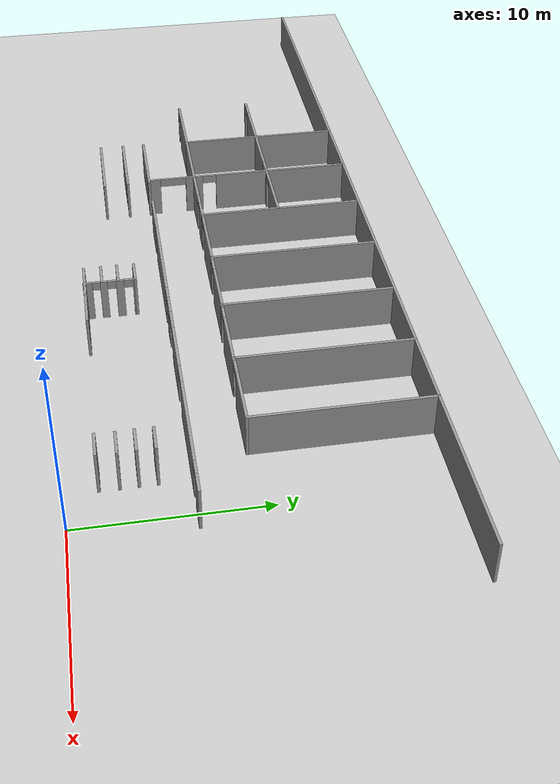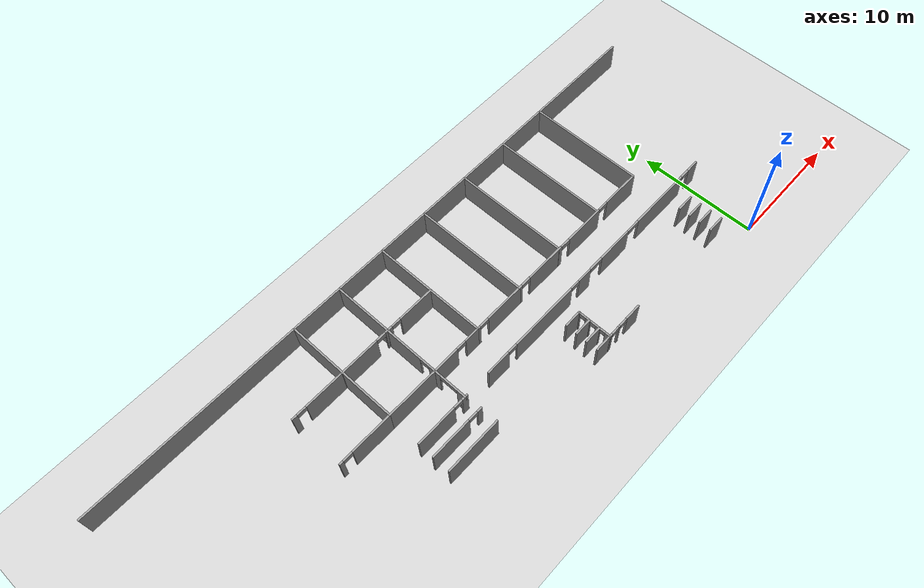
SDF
<sdf version="1.7">
 <world name="default">
  <model name="ground_plane">
   <static>1</static>
   <link name="link">
    <collision name="collision">
     <geometry><plane><normal>0 0 1</normal><size>100 100</size></plane></geometry>
     <surface>
      <contact><collide_bitmask>65535</collide_bitmask></contact>
      <friction><ode><mu>100</mu><mu2>50</mu2></ode></friction>
     </surface>
    </collision>
    <visual name="visual">
     <cast_shadows>0</cast_shadows>
     <geometry><plane><normal>0 0 1</normal><size>100 100</size></plane></geometry>
     <material>
      <script><uri>file://media/materials/scripts/gazebo.material</uri><name>Gazebo/Grey</name></script>
     </material>
    </visual>
   </link>
  </model>
  <model name="anglo_3_andar">
   <pose>-0.36557 -0.844839 0 0 -0 0</pose>
   <link name="Wall_100">
    <collision name="Wall_100_Collision">
     <geometry><box><size>9.75 0.15 2.5</size></box></geometry>
     <pose>0 0 1.25 0 -0 0</pose>
    </collision>
    <visual name="Wall_100_Visual">
     <pose>0 0 1.25 0 -0 0</pose>
     <geometry><box><size>9.75 0.15 2.5</size></box></geometry>
     <material>
      <script><uri>file://media/materials/scripts/gazebo.material</uri><name>Gazebo/Grey</name></script>
      <ambient>1 1 1 1</ambient>
     </material>
     <meta><layer>0</layer></meta>
    </visual>
    <pose>-16.5823 14.6737 0 0 -0 -1.5708</pose>
   </link>
   <link name="Wall_102">
    <pose>-14.2823 9.87368 0 0 -0 0</pose>
    <visual name="Wall_102_Visual_0">
     <pose>-2.195 0 1.25 0 -0 0</pose>
     <geometry><box><size>0.360001 0.15 2.5</size></box></geometry>
     <material>
      <script><uri>file://media/materials/scripts/gazebo.material</uri><name>Gazebo/Grey</name></script>
      <ambient>1 1 1 1</ambient>
     </material>
     <meta><layer>0</layer></meta>
    </visual>
    <collision name="Wall_102_Collision_0">
     <geometry><box><size>0.360001 0.15 2.5</size></box></geometry>
     <pose>-2.195 0 1.25 0 -0 0</pose>
    </collision>
    <visual name="Wall_102_Visual_1">
     <pose>0.61 0 1.25 0 -0 0</pose>
     <geometry><box><size>3.53 0.15 2.5</size></box></geometry>
     <material>
      <script><uri>file://media/materials/scripts/gazebo.material</uri><name>Gazebo/Grey</name></script>
      <ambient>1 1 1 1</ambient>
     </material>
     <meta><layer>0</layer></meta>
    </visual>
    <collision name="Wall_102_Collision_1">
     <geometry><box><size>3.53 0.15 2.5</size></box></geometry>
     <pose>0.61 0 1.25 0 -0 0</pose>
    </collision>
    <visual name="Wall_102_Visual_2">
     <pose>-1.585 0 2.25 0 -0 0</pose>
     <geometry><box><size>0.86 0.15 0.5</size></box></geometry>
     <material>
      <script><uri>file://media/materials/scripts/gazebo.material</uri><name>Gazebo/Grey</name></script>
      <ambient>1 1 1 1</ambient>
     </material>
     <meta><layer>0</layer></meta>
    </visual>
    <collision name="Wall_102_Collision_2">
     <geometry><box><size>0.86 0.15 0.5</size></box></geometry>
     <pose>-1.585 0 2.25 0 -0 0</pose>
    </collision>
   </link>
   <link name="Wall_104">
    <collision name="Wall_104_Collision">
     <geometry><box><size>9.75 0.15 2.5</size></box></geometry>
     <pose>0 0 1.25 0 -0 0</pose>
    </collision>
    <visual name="Wall_104_Visual">
     <pose>0 0 1.25 0 -0 0</pose>
     <geometry><box><size>9.75 0.15 2.5</size></box></geometry>
     <material>
      <script><uri>file://media/materials/scripts/gazebo.material</uri><name>Gazebo/Grey</name></script>
      <ambient>1 1 1 1</ambient>
     </material>
     <meta><layer>0</layer></meta>
    </visual>
    <pose>-21.0123 14.6737 0 0 -0 -1.5708</pose>
   </link>
   <link name="Wall_106">
    <pose>-18.7973 9.87368 0 0 -0 0</pose>
    <visual name="Wall_106_Visual_0">
     <pose>-2.13 0 1.25 0 -0 0</pose>
     <geometry><box><size>0.319999 0.15 2.5</size></box></geometry>
     <material>
      <script><uri>file://media/materials/scripts/gazebo.material</uri><name>Gazebo/Grey</name></script>
      <ambient>1 1 1 1</ambient>
     </material>
     <meta><layer>0</layer></meta>
    </visual>
    <collision name="Wall_106_Collision_0">
     <geometry><box><size>0.319999 0.15 2.5</size></box></geometry>
     <pose>-2.13 0 1.25 0 -0 0</pose>
    </collision>
    <visual name="Wall_106_Visual_1">
     <pose>0.579999 0 1.25 0 -0 0</pose>
     <geometry><box><size>3.42 0.15 2.5</size></box></geometry>
     <material>
      <script><uri>file://media/materials/scripts/gazebo.material</uri><name>Gazebo/Grey</name></script>
      <ambient>1 1 1 1</ambient>
     </material>
     <meta><layer>0</layer></meta>
    </visual>
    <collision name="Wall_106_Collision_1">
     <geometry><box><size>3.42 0.15 2.5</size></box></geometry>
     <pose>0.579999 0 1.25 0 -0 0</pose>
    </collision>
    <visual name="Wall_106_Visual_2">
     <pose>-1.55 0 2.25 0 -0 0</pose>
     <geometry><box><size>0.84 0.15 0.5</size></box></geometry>
     <material>
      <script><uri>file://media/materials/scripts/gazebo.material</uri><name>Gazebo/Grey</name></script>
      <ambient>1 1 1 1</ambient>
     </material>
     <meta><layer>0</layer></meta>
    </visual>
    <collision name="Wall_106_Collision_2">
     <geometry><box><size>0.84 0.15 0.5</size></box></geometry>
     <pose>-1.55 0 2.25 0 -0 0</pose>
    </collision>
   </link>
   <link name="Wall_108">
    <pose>-25.3623 14.6637 0 0 -0 -1.5708</pose>
    <visual name="Wall_108_Visual_0">
     <pose>-0.73 0 1.25 0 -0 0</pose>
     <geometry><box><size>8.29 0.15 2.5</size></box></geometry>
     <material>
      <script><uri>file://media/materials/scripts/gazebo.material</uri><name>Gazebo/Grey</name></script>
      <ambient>1 1 1 1</ambient>
     </material>
     <meta><layer>0</layer></meta>
    </visual>
    <collision name="Wall_108_Collision_0">
     <geometry><box><size>8.29 0.15 2.5</size></box></geometry>
     <pose>-0.73 0 1.25 0 -0 0</pose>
    </collision>
    <visual name="Wall_108_Visual_1">
     <pose>4.57 0 1.25 0 -0 0</pose>
     <geometry><box><size>0.61 0.15 2.5</size></box></geometry>
     <material>
      <script><uri>file://media/materials/scripts/gazebo.material</uri><name>Gazebo/Grey</name></script>
      <ambient>1 1 1 1</ambient>
     </material>
     <meta><layer>0</layer></meta>
    </visual>
    <collision name="Wall_108_Collision_1">
     <geometry><box><size>0.61 0.15 2.5</size></box></geometry>
     <pose>4.57 0 1.25 0 -0 0</pose>
    </collision>
    <visual name="Wall_108_Visual_2">
     <pose>3.84 0 2.25 0 -0 0</pose>
     <geometry><box><size>0.85 0.15 0.5</size></box></geometry>
     <material>
      <script><uri>file://media/materials/scripts/gazebo.material</uri><name>Gazebo/Grey</name></script>
      <ambient>1 1 1 1</ambient>
     </material>
     <meta><layer>0</layer></meta>
    </visual>
    <collision name="Wall_108_Collision_2">
     <geometry><box><size>0.85 0.15 0.5</size></box></geometry>
     <pose>3.84 0 2.25 0 -0 0</pose>
    </collision>
   </link>
   <link name="Wall_110">
    <pose>-23.2173 14.5137 0 0 -0 0</pose>
    <visual name="Wall_110_Visual_0">
     <pose>-1.9875 0 1.25 0 -0 0</pose>
     <geometry><box><size>0.524999 0.15 2.5</size></box></geometry>
     <material>
      <script><uri>file://media/materials/scripts/gazebo.material</uri><name>Gazebo/Grey</name></script>
      <ambient>1 1 1 1</ambient>
     </material>
     <meta><layer>0</layer></meta>
    </visual>
    <collision name="Wall_110_Collision_0">
     <geometry><box><size>0.524999 0.15 2.5</size></box></geometry>
     <pose>-1.9875 0 1.25 0 -0 0</pose>
    </collision>
    <visual name="Wall_110_Visual_1">
     <pose>0.6725 0 1.25 0 -0 0</pose>
     <geometry><box><size>3.155 0.15 2.5</size></box></geometry>
     <material>
      <script><uri>file://media/materials/scripts/gazebo.material</uri><name>Gazebo/Grey</name></script>
      <ambient>1 1 1 1</ambient>
     </material>
     <meta><layer>0</layer></meta>
    </visual>
    <collision name="Wall_110_Collision_1">
     <geometry><box><size>3.155 0.15 2.5</size></box></geometry>
     <pose>0.6725 0 1.25 0 -0 0</pose>
    </collision>
    <visual name="Wall_110_Visual_2">
     <pose>-1.315 0 2.25 0 -0 0</pose>
     <geometry><box><size>0.82 0.15 0.5</size></box></geometry>
     <material>
      <script><uri>file://media/materials/scripts/gazebo.material</uri><name>Gazebo/Grey</name></script>
      <ambient>1 1 1 1</ambient>
     </material>
     <meta><layer>0</layer></meta>
    </visual>
    <collision name="Wall_110_Collision_2">
     <geometry><box><size>0.82 0.15 0.5</size></box></geometry>
     <pose>-1.315 0 2.25 0 -0 0</pose>
    </collision>
   </link>
   <link name="Wall_112">
    <pose>-23.1873 9.86868 0 0 -0 0.002299</pose>
    <visual name="Wall_112_Visual_0">
     <pose>-1.10011 0 1.25 0 -0 0</pose>
     <geometry><box><size>2.29978 0.15 2.5</size></box></geometry>
     <material>
      <script><uri>file://media/materials/scripts/gazebo.material</uri><name>Gazebo/Grey</name></script>
      <ambient>1 1 1 1</ambient>
     </material>
     <meta><layer>0</layer></meta>
    </visual>
    <collision name="Wall_112_Collision_0">
     <geometry><box><size>2.29978 0.15 2.5</size></box></geometry>
     <pose>-1.10011 0 1.25 0 -0 0</pose>
    </collision>
    <visual name="Wall_112_Visual_1">
     <pose>1.56989 0 1.25 0 -0 0</pose>
     <geometry><box><size>1.36023 0.15 2.5</size></box></geometry>
     <material>
      <script><uri>file://media/materials/scripts/gazebo.material</uri><name>Gazebo/Grey</name></script>
      <ambient>1 1 1 1</ambient>
     </material>
     <meta><layer>0</layer></meta>
    </visual>
    <collision name="Wall_112_Collision_1">
     <geometry><box><size>1.36023 0.15 2.5</size></box></geometry>
     <pose>1.56989 0 1.25 0 -0 0</pose>
    </collision>
    <visual name="Wall_112_Visual_2">
     <pose>0.469779 0 2.25 0 -0 0</pose>
     <geometry><box><size>0.84 0.15 0.5</size></box></geometry>
     <material>
      <script><uri>file://media/materials/scripts/gazebo.material</uri><name>Gazebo/Grey</name></script>
      <ambient>1 1 1 1</ambient>
     </material>
     <meta><layer>0</layer></meta>
    </visual>
    <collision name="Wall_112_Collision_2">
     <geometry><box><size>0.84 0.15 0.5</size></box></geometry>
     <pose>0.469779 0 2.25 0 -0 0</pose>
    </collision>
   </link>
   <link name="Wall_114">
    <collision name="Wall_114_Collision">
     <geometry><box><size>9.75 0.15 2.5</size></box></geometry>
     <pose>0 0 1.25 0 -0 0</pose>
    </collision>
    <visual name="Wall_114_Visual">
     <pose>0 0 1.25 0 -0 0</pose>
     <geometry><box><size>9.75 0.15 2.5</size></box></geometry>
     <material>
      <script><uri>file://media/materials/scripts/gazebo.material</uri><name>Gazebo/Grey</name></script>
      <ambient>1 1 1 1</ambient>
     </material>
     <meta><layer>0</layer></meta>
    </visual>
    <pose>-29.7023 14.6737 0 0 -0 -1.5708</pose>
   </link>
   <link name="Wall_116">
    <pose>-27.5673 14.5137 0 0 -0 0</pose>
    <visual name="Wall_116_Visual_0">
     <pose>-0.565 0 1.25 0 -0 0</pose>
     <geometry><box><size>3.37 0.15 2.5</size></box></geometry>
     <material>
      <script><uri>file://media/materials/scripts/gazebo.material</uri><name>Gazebo/Grey</name></script>
      <ambient>1 1 1 1</ambient>
     </material>
     <meta><layer>0</layer></meta>
    </visual>
    <collision name="Wall_116_Collision_0">
     <geometry><box><size>3.37 0.15 2.5</size></box></geometry>
     <pose>-0.565 0 1.25 0 -0 0</pose>
    </collision>
    <visual name="Wall_116_Visual_1">
     <pose>2.1 0 1.25 0 -0 0</pose>
     <geometry><box><size>0.3 0.15 2.5</size></box></geometry>
     <material>
      <script><uri>file://media/materials/scripts/gazebo.material</uri><name>Gazebo/Grey</name></script>
      <ambient>1 1 1 1</ambient>
     </material>
     <meta><layer>0</layer></meta>
    </visual>
    <collision name="Wall_116_Collision_1">
     <geometry><box><size>0.3 0.15 2.5</size></box></geometry>
     <pose>2.1 0 1.25 0 -0 0</pose>
    </collision>
    <visual name="Wall_116_Visual_2">
     <pose>1.535 0 2.25 0 -0 0</pose>
     <geometry><box><size>0.83 0.15 0.5</size></box></geometry>
     <material>
      <script><uri>file://media/materials/scripts/gazebo.material</uri><name>Gazebo/Grey</name></script>
      <ambient>1 1 1 1</ambient>
     </material>
     <meta><layer>0</layer></meta>
    </visual>
    <collision name="Wall_116_Collision_2">
     <geometry><box><size>0.83 0.15 0.5</size></box></geometry>
     <pose>1.535 0 2.25 0 -0 0</pose>
    </collision>
   </link>
   <link name="Wall_118">
    <collision name="Wall_118_Collision">
     <geometry><box><size>4.49001 0.15 2.5</size></box></geometry>
     <pose>0 0 1.25 0 -0 0</pose>
    </collision>
    <visual name="Wall_118_Visual">
     <pose>0 0 1.25 0 -0 0</pose>
     <geometry><box><size>4.49001 0.15 2.5</size></box></geometry>
     <material>
      <script><uri>file://media/materials/scripts/gazebo.material</uri><name>Gazebo/Grey</name></script>
      <ambient>1 1 1 1</ambient>
     </material>
     <meta><layer>0</layer></meta>
    </visual>
    <pose>-27.5323 9.86868 0 0 -0 -0.002304</pose>
   </link>
   <link name="Wall_122">
    <pose>-32.0123 14.5137 0 0 -0 0</pose>
    <visual name="Wall_122_Visual_0">
     <pose>-2.11 0 1.25 0 -0 0</pose>
     <geometry><box><size>0.469999 0.15 2.5</size></box></geometry>
     <material>
      <script><uri>file://media/materials/scripts/gazebo.material</uri><name>Gazebo/Grey</name></script>
      <ambient>1 1 1 1</ambient>
     </material>
     <meta><layer>0</layer></meta>
    </visual>
    <collision name="Wall_122_Collision_0">
     <geometry><box><size>0.469999 0.15 2.5</size></box></geometry>
     <pose>-2.11 0 1.25 0 -0 0</pose>
    </collision>
    <visual name="Wall_122_Visual_1">
     <pose>0.639999 0 1.25 0 -0 0</pose>
     <geometry><box><size>3.41 0.15 2.5</size></box></geometry>
     <material>
      <script><uri>file://media/materials/scripts/gazebo.material</uri><name>Gazebo/Grey</name></script>
      <ambient>1 1 1 1</ambient>
     </material>
     <meta><layer>0</layer></meta>
    </visual>
    <collision name="Wall_122_Collision_1">
     <geometry><box><size>3.41 0.15 2.5</size></box></geometry>
     <pose>0.639999 0 1.25 0 -0 0</pose>
    </collision>
    <visual name="Wall_122_Visual_2">
     <pose>-1.47 0 2.25 0 -0 0</pose>
     <geometry><box><size>0.81 0.15 0.5</size></box></geometry>
     <material>
      <script><uri>file://media/materials/scripts/gazebo.material</uri><name>Gazebo/Grey</name></script>
      <ambient>1 1 1 1</ambient>
     </material>
     <meta><layer>0</layer></meta>
    </visual>
    <collision name="Wall_122_Collision_2">
     <geometry><box><size>0.81 0.15 0.5</size></box></geometry>
     <pose>-1.47 0 2.25 0 -0 0</pose>
    </collision>
   </link>
   <link name="Wall_127">
    <pose>-31.9873 9.87368 0 0 -0 0</pose>
    <visual name="Wall_127_Visual_0">
     <pose>-2.1825 0 1.25 0 -0 0</pose>
     <geometry><box><size>0.354999 0.15 2.5</size></box></geometry>
     <material>
      <script><uri>file://media/materials/scripts/gazebo.material</uri><name>Gazebo/Grey</name></script>
      <ambient>1 1 1 1</ambient>
     </material>
     <meta><layer>0</layer></meta>
    </visual>
    <collision name="Wall_127_Collision_0">
     <geometry><box><size>0.354999 0.15 2.5</size></box></geometry>
     <pose>-2.1825 0 1.25 0 -0 0</pose>
    </collision>
    <visual name="Wall_127_Visual_1">
     <pose>0.587499 0 1.25 0 -0 0</pose>
     <geometry><box><size>3.545 0.15 2.5</size></box></geometry>
     <material>
      <script><uri>file://media/materials/scripts/gazebo.material</uri><name>Gazebo/Grey</name></script>
      <ambient>1 1 1 1</ambient>
     </material>
     <meta><layer>0</layer></meta>
    </visual>
    <collision name="Wall_127_Collision_1">
     <geometry><box><size>3.545 0.15 2.5</size></box></geometry>
     <pose>0.587499 0 1.25 0 -0 0</pose>
    </collision>
    <visual name="Wall_127_Visual_2">
     <pose>-1.595 0 2.25 0 -0 0</pose>
     <geometry><box><size>0.82 0.15 0.5</size></box></geometry>
     <material>
      <script><uri>file://media/materials/scripts/gazebo.material</uri><name>Gazebo/Grey</name></script>
      <ambient>1 1 1 1</ambient>
     </material>
     <meta><layer>0</layer></meta>
    </visual>
    <collision name="Wall_127_Collision_2">
     <geometry><box><size>0.82 0.15 0.5</size></box></geometry>
     <pose>-1.595 0 2.25 0 -0 0</pose>
    </collision>
   </link>
   <link name="Wall_197">
    <pose>-27.5023 7.01368 0 0 -0 0</pose>
    <visual name="Wall_197_Visual_0">
     <pose>-0.65 0 1.25 0 -0 0</pose>
     <geometry><box><size>3.45 0.15 2.5</size></box></geometry>
     <material>
      <script><uri>file://media/materials/scripts/gazebo.material</uri><name>Gazebo/Grey</name></script>
      <ambient>1 1 1 1</ambient>
     </material>
     <meta><layer>0</layer></meta>
    </visual>
    <collision name="Wall_197_Collision_0">
     <geometry><box><size>3.45 0.15 2.5</size></box></geometry>
     <pose>-0.65 0 1.25 0 -0 0</pose>
    </collision>
    <visual name="Wall_197_Visual_1">
     <pose>2.105 0 1.25 0 -0 0</pose>
     <geometry><box><size>0.54 0.15 2.5</size></box></geometry>
     <material>
      <script><uri>file://media/materials/scripts/gazebo.material</uri><name>Gazebo/Grey</name></script>
      <ambient>1 1 1 1</ambient>
     </material>
     <meta><layer>0</layer></meta>
    </visual>
    <collision name="Wall_197_Collision_1">
     <geometry><box><size>0.54 0.15 2.5</size></box></geometry>
     <pose>2.105 0 1.25 0 -0 0</pose>
    </collision>
    <visual name="Wall_197_Visual_2">
     <pose>1.455 0 2.25 0 -0 0</pose>
     <geometry><box><size>0.76 0.15 0.5</size></box></geometry>
     <material>
      <script><uri>file://media/materials/scripts/gazebo.material</uri><name>Gazebo/Grey</name></script>
      <ambient>1 1 1 1</ambient>
     </material>
     <meta><layer>0</layer></meta>
    </visual>
    <collision name="Wall_197_Collision_2">
     <geometry><box><size>0.76 0.15 0.5</size></box></geometry>
     <pose>1.455 0 2.25 0 -0 0</pose>
    </collision>
   </link>
   <link name="Wall_201">
    <pose>-27.5223 5.67368 0 0 -0 0</pose>
    <visual name="Wall_201_Visual_0">
     <pose>-0.63 0 1.25 0 -0 0</pose>
     <geometry><box><size>3.49 0.15 2.5</size></box></geometry>
     <material>
      <script><uri>file://media/materials/scripts/gazebo.material</uri><name>Gazebo/Grey</name></script>
      <ambient>1 1 1 1</ambient>
     </material>
     <meta><layer>0</layer></meta>
    </visual>
    <collision name="Wall_201_Collision_0">
     <geometry><box><size>3.49 0.15 2.5</size></box></geometry>
     <pose>-0.63 0 1.25 0 -0 0</pose>
    </collision>
    <visual name="Wall_201_Visual_1">
     <pose>2.145 0 1.25 0 -0 0</pose>
     <geometry><box><size>0.460001 0.15 2.5</size></box></geometry>
     <material>
      <script><uri>file://media/materials/scripts/gazebo.material</uri><name>Gazebo/Grey</name></script>
      <ambient>1 1 1 1</ambient>
     </material>
     <meta><layer>0</layer></meta>
    </visual>
    <collision name="Wall_201_Collision_1">
     <geometry><box><size>0.460001 0.15 2.5</size></box></geometry>
     <pose>2.145 0 1.25 0 -0 0</pose>
    </collision>
    <visual name="Wall_201_Visual_2">
     <pose>1.515 0 2.25 0 -0 0</pose>
     <geometry><box><size>0.8 0.15 0.5</size></box></geometry>
     <material>
      <script><uri>file://media/materials/scripts/gazebo.material</uri><name>Gazebo/Grey</name></script>
      <ambient>1 1 1 1</ambient>
     </material>
     <meta><layer>0</layer></meta>
    </visual>
    <collision name="Wall_201_Collision_2">
     <geometry><box><size>0.8 0.15 0.5</size></box></geometry>
     <pose>1.515 0 2.25 0 -0 0</pose>
    </collision>
   </link>
   <link name="Wall_203">
    <collision name="Wall_203_Collision">
     <geometry><box><size>4.75 0.15 2.5</size></box></geometry>
     <pose>0 0 1.25 0 -0 0</pose>
    </collision>
    <visual name="Wall_203_Visual">
     <pose>0 0 1.25 0 -0 0</pose>
     <geometry><box><size>4.75 0.15 2.5</size></box></geometry>
     <material>
      <script><uri>file://media/materials/scripts/gazebo.material</uri><name>Gazebo/Grey</name></script>
      <ambient>1 1 1 1</ambient>
     </material>
     <meta><layer>0</layer></meta>
    </visual>
    <pose>-27.5023 4.23368 0 0 -0 0</pose>
   </link>
   <link name="Wall_231">
    <pose>-10.9023 7.03368 0 0 -0 0</pose>
    <visual name="Wall_231_Visual_0">
     <pose>-11.07 0 1.25 0 -0 0</pose>
     <geometry><box><size>2.11 0.15 2.5</size></box></geometry>
     <material>
      <script><uri>file://media/materials/scripts/gazebo.material</uri><name>Gazebo/Grey</name></script>
      <ambient>1 1 1 1</ambient>
     </material>
     <meta><layer>0</layer></meta>
    </visual>
    <collision name="Wall_231_Collision_0">
     <geometry><box><size>2.11 0.15 2.5</size></box></geometry>
     <pose>-11.07 0 1.25 0 -0 0</pose>
    </collision>
    <visual name="Wall_231_Visual_1">
     <pose>-6.19 0 1.25 0 -0 0</pose>
     <geometry><box><size>5.99 0.15 2.5</size></box></geometry>
     <material>
      <script><uri>file://media/materials/scripts/gazebo.material</uri><name>Gazebo/Grey</name></script>
      <ambient>1 1 1 1</ambient>
     </material>
     <meta><layer>0</layer></meta>
    </visual>
    <collision name="Wall_231_Collision_1">
     <geometry><box><size>5.99 0.15 2.5</size></box></geometry>
     <pose>-6.19 0 1.25 0 -0 0</pose>
    </collision>
    <visual name="Wall_231_Visual_2">
     <pose>-1.7 0 1.25 0 -0 0</pose>
     <geometry><box><size>1.31 0.15 2.5</size></box></geometry>
     <material>
      <script><uri>file://media/materials/scripts/gazebo.material</uri><name>Gazebo/Grey</name></script>
      <ambient>1 1 1 1</ambient>
     </material>
     <meta><layer>0</layer></meta>
    </visual>
    <collision name="Wall_231_Collision_2">
     <geometry><box><size>1.31 0.15 2.5</size></box></geometry>
     <pose>-1.7 0 1.25 0 -0 0</pose>
    </collision>
    <visual name="Wall_231_Visual_3">
     <pose>1.84 0 1.25 0 -0 0</pose>
     <geometry><box><size>3.15 0.15 2.5</size></box></geometry>
     <material>
      <script><uri>file://media/materials/scripts/gazebo.material</uri><name>Gazebo/Grey</name></script>
      <ambient>1 1 1 1</ambient>
     </material>
     <meta><layer>0</layer></meta>
    </visual>
    <collision name="Wall_231_Collision_3">
     <geometry><box><size>3.15 0.15 2.5</size></box></geometry>
     <pose>1.84 0 1.25 0 -0 0</pose>
    </collision>
    <visual name="Wall_231_Visual_4">
     <pose>7.4025 0 1.25 0 -0 0</pose>
     <geometry><box><size>5.515 0.15 2.5</size></box></geometry>
     <material>
      <script><uri>file://media/materials/scripts/gazebo.material</uri><name>Gazebo/Grey</name></script>
      <ambient>1 1 1 1</ambient>
     </material>
     <meta><layer>0</layer></meta>
    </visual>
    <collision name="Wall_231_Collision_4">
     <geometry><box><size>5.515 0.15 2.5</size></box></geometry>
     <pose>7.4025 0 1.25 0 -0 0</pose>
    </collision>
    <visual name="Wall_231_Visual_5">
     <pose>11.5625 0 1.25 0 -0 0</pose>
     <geometry><box><size>1.125 0.15 2.5</size></box></geometry>
     <material>
      <script><uri>file://media/materials/scripts/gazebo.material</uri><name>Gazebo/Grey</name></script>
      <ambient>1 1 1 1</ambient>
     </material>
     <meta><layer>0</layer></meta>
    </visual>
    <collision name="Wall_231_Collision_5">
     <geometry><box><size>1.125 0.15 2.5</size></box></geometry>
     <pose>11.5625 0 1.25 0 -0 0</pose>
    </collision>
    <visual name="Wall_231_Visual_6">
     <pose>-9.6 0 2.25 0 -0 0</pose>
     <geometry><box><size>0.83 0.15 0.5</size></box></geometry>
     <material>
      <script><uri>file://media/materials/scripts/gazebo.material</uri><name>Gazebo/Grey</name></script>
      <ambient>1 1 1 1</ambient>
     </material>
     <meta><layer>0</layer></meta>
    </visual>
    <collision name="Wall_231_Collision_6">
     <geometry><box><size>0.83 0.15 0.5</size></box></geometry>
     <pose>-9.6 0 2.25 0 -0 0</pose>
    </collision>
    <visual name="Wall_231_Visual_7">
     <pose>-2.775 0 2.25 0 -0 0</pose>
     <geometry><box><size>0.84 0.15 0.5</size></box></geometry>
     <material>
      <script><uri>file://media/materials/scripts/gazebo.material</uri><name>Gazebo/Grey</name></script>
      <ambient>1 1 1 1</ambient>
     </material>
     <meta><layer>0</layer></meta>
    </visual>
    <collision name="Wall_231_Collision_7">
     <geometry><box><size>0.84 0.15 0.5</size></box></geometry>
     <pose>-2.775 0 2.25 0 -0 0</pose>
    </collision>
    <visual name="Wall_231_Visual_8">
     <pose>-0.389999 0 2.25 0 -0 0</pose>
     <geometry><box><size>1.31 0.15 0.5</size></box></geometry>
     <material>
      <script><uri>file://media/materials/scripts/gazebo.material</uri><name>Gazebo/Grey</name></script>
      <ambient>1 1 1 1</ambient>
     </material>
     <meta><layer>0</layer></meta>
    </visual>
    <collision name="Wall_231_Collision_8">
     <geometry><box><size>1.31 0.15 0.5</size></box></geometry>
     <pose>-0.389999 0 2.25 0 -0 0</pose>
    </collision>
    <visual name="Wall_231_Visual_9">
     <pose>4.03 0 2.25 0 -0 0</pose>
     <geometry><box><size>1.23 0.15 0.5</size></box></geometry>
     <material>
      <script><uri>file://media/materials/scripts/gazebo.material</uri><name>Gazebo/Grey</name></script>
      <ambient>1 1 1 1</ambient>
     </material>
     <meta><layer>0</layer></meta>
    </visual>
    <collision name="Wall_231_Collision_9">
     <geometry><box><size>1.23 0.15 0.5</size></box></geometry>
     <pose>4.03 0 2.25 0 -0 0</pose>
    </collision>
    <visual name="Wall_231_Visual_10">
     <pose>10.58 0 2.25 0 -0 0</pose>
     <geometry><box><size>0.84 0.15 0.5</size></box></geometry>
     <material>
      <script><uri>file://media/materials/scripts/gazebo.material</uri><name>Gazebo/Grey</name></script>
      <ambient>1 1 1 1</ambient>
     </material>
     <meta><layer>0</layer></meta>
    </visual>
    <collision name="Wall_231_Collision_10">
     <geometry><box><size>0.84 0.15 0.5</size></box></geometry>
     <pose>10.58 0 2.25 0 -0 0</pose>
    </collision>
   </link>
   <link name="Wall_235">
    <collision name="Wall_235_Collision">
     <geometry><box><size>1.54004 0.15 2.5</size></box></geometry>
     <pose>0 0 1.25 0 -0 0</pose>
    </collision>
    <visual name="Wall_235_Visual">
     <pose>0 0 1.25 0 -0 0</pose>
     <geometry><box><size>1.54004 0.15 2.5</size></box></geometry>
     <material>
      <script><uri>file://media/materials/scripts/gazebo.material</uri><name>Gazebo/Grey</name></script>
      <ambient>1 1 1 1</ambient>
     </material>
     <meta><layer>0</layer></meta>
    </visual>
    <pose>-15.8973 5.37868 0 0 -0 0.007194</pose>
   </link>
   <link name="Wall_237">
    <collision name="Wall_237_Collision">
     <geometry><box><size>1.5 0.15 2.5</size></box></geometry>
     <pose>0 0 1.25 0 -0 0</pose>
    </collision>
    <visual name="Wall_237_Visual">
     <pose>0 0 1.25 0 -0 0</pose>
     <geometry><box><size>1.5 0.15 2.5</size></box></geometry>
     <material>
      <script><uri>file://media/materials/scripts/gazebo.material</uri><name>Gazebo/Grey</name></script>
      <ambient>1 1 1 1</ambient>
     </material>
     <meta><layer>0</layer></meta>
    </visual>
    <pose>-15.9273 4.42368 0 0 -0 0</pose>
   </link>
   <link name="Wall_239">
    <collision name="Wall_239_Collision">
     <geometry><box><size>1.5 0.15 2.5</size></box></geometry>
     <pose>0 0 1.25 0 -0 0</pose>
    </collision>
    <visual name="Wall_239_Visual">
     <pose>0 0 1.25 0 -0 0</pose>
     <geometry><box><size>1.5 0.15 2.5</size></box></geometry>
     <material>
      <script><uri>file://media/materials/scripts/gazebo.material</uri><name>Gazebo/Grey</name></script>
      <ambient>1 1 1 1</ambient>
     </material>
     <meta><layer>0</layer></meta>
    </visual>
    <pose>-15.9373 3.51368 0 0 -0 0</pose>
   </link>
   <link name="Wall_241">
    <pose>-14.2923 2.55368 0 0 -0 0</pose>
    <visual name="Wall_241_Visual_0">
     <pose>-1.53 0 1.25 0 -0 0</pose>
     <geometry><box><size>1.69 0.15 2.5</size></box></geometry>
     <material>
      <script><uri>file://media/materials/scripts/gazebo.material</uri><name>Gazebo/Grey</name></script>
      <ambient>1 1 1 1</ambient>
     </material>
     <meta><layer>0</layer></meta>
    </visual>
    <collision name="Wall_241_Collision_0">
     <geometry><box><size>1.69 0.15 2.5</size></box></geometry>
     <pose>-1.53 0 1.25 0 -0 0</pose>
    </collision>
    <visual name="Wall_241_Visual_1">
     <pose>0.115 0 1.25 0 -0 0</pose>
     <geometry><box><size>0.180001 0.15 2.5</size></box></geometry>
     <material>
      <script><uri>file://media/materials/scripts/gazebo.material</uri><name>Gazebo/Grey</name></script>
      <ambient>1 1 1 1</ambient>
     </material>
     <meta><layer>0</layer></meta>
    </visual>
    <collision name="Wall_241_Collision_1">
     <geometry><box><size>0.180001 0.15 2.5</size></box></geometry>
     <pose>0.115 0 1.25 0 -0 0</pose>
    </collision>
    <visual name="Wall_241_Visual_2">
     <pose>1.665 0 1.25 0 -0 0</pose>
     <geometry><box><size>1.42 0.15 2.5</size></box></geometry>
     <material>
      <script><uri>file://media/materials/scripts/gazebo.material</uri><name>Gazebo/Grey</name></script>
      <ambient>1 1 1 1</ambient>
     </material>
     <meta><layer>0</layer></meta>
    </visual>
    <collision name="Wall_241_Collision_2">
     <geometry><box><size>1.42 0.15 2.5</size></box></geometry>
     <pose>1.665 0 1.25 0 -0 0</pose>
    </collision>
    <visual name="Wall_241_Visual_3">
     <pose>-0.330001 0 2.25 0 -0 0</pose>
     <geometry><box><size>0.71 0.15 0.5</size></box></geometry>
     <material>
      <script><uri>file://media/materials/scripts/gazebo.material</uri><name>Gazebo/Grey</name></script>
      <ambient>1 1 1 1</ambient>
     </material>
     <meta><layer>0</layer></meta>
    </visual>
    <collision name="Wall_241_Collision_3">
     <geometry><box><size>0.71 0.15 0.5</size></box></geometry>
     <pose>-0.330001 0 2.25 0 -0 0</pose>
    </collision>
    <visual name="Wall_241_Visual_4">
     <pose>0.58 0 2.25 0 -0 0</pose>
     <geometry><box><size>0.75 0.15 0.5</size></box></geometry>
     <material>
      <script><uri>file://media/materials/scripts/gazebo.material</uri><name>Gazebo/Grey</name></script>
      <ambient>1 1 1 1</ambient>
     </material>
     <meta><layer>0</layer></meta>
    </visual>
    <collision name="Wall_241_Collision_4">
     <geometry><box><size>0.75 0.15 0.5</size></box></geometry>
     <pose>0.58 0 2.25 0 -0 0</pose>
    </collision>
   </link>
   <link name="Wall_248">
    <pose>-15.2123 3.94868 0 0 -0 -1.5708</pose>
    <visual name="Wall_248_Visual_0">
     <pose>-1.395 0 1.25 0 -0 0</pose>
     <geometry><box><size>0.21 0.15 2.5</size></box></geometry>
     <material>
      <script><uri>file://media/materials/scripts/gazebo.material</uri><name>Gazebo/Grey</name></script>
      <ambient>1 1 1 1</ambient>
     </material>
     <meta><layer>0</layer></meta>
    </visual>
    <collision name="Wall_248_Collision_0">
     <geometry><box><size>0.21 0.15 2.5</size></box></geometry>
     <pose>-1.395 0 1.25 0 -0 0</pose>
    </collision>
    <visual name="Wall_248_Visual_1">
     <pose>-0.5675 0 1.25 0 -0 0</pose>
     <geometry><box><size>0.445 0.15 2.5</size></box></geometry>
     <material>
      <script><uri>file://media/materials/scripts/gazebo.material</uri><name>Gazebo/Grey</name></script>
      <ambient>1 1 1 1</ambient>
     </material>
     <meta><layer>0</layer></meta>
    </visual>
    <collision name="Wall_248_Collision_1">
     <geometry><box><size>0.445 0.15 2.5</size></box></geometry>
     <pose>-0.5675 0 1.25 0 -0 0</pose>
    </collision>
    <visual name="Wall_248_Visual_2">
     <pose>0.3375 0 1.25 0 -0 0</pose>
     <geometry><box><size>0.405 0.15 2.5</size></box></geometry>
     <material>
      <script><uri>file://media/materials/scripts/gazebo.material</uri><name>Gazebo/Grey</name></script>
      <ambient>1 1 1 1</ambient>
     </material>
     <meta><layer>0</layer></meta>
    </visual>
    <collision name="Wall_248_Collision_2">
     <geometry><box><size>0.405 0.15 2.5</size></box></geometry>
     <pose>0.3375 0 1.25 0 -0 0</pose>
    </collision>
    <visual name="Wall_248_Visual_3">
     <pose>1.235 0 1.25 0 -0 0</pose>
     <geometry><box><size>0.53 0.15 2.5</size></box></geometry>
     <material>
      <script><uri>file://media/materials/scripts/gazebo.material</uri><name>Gazebo/Grey</name></script>
      <ambient>1 1 1 1</ambient>
     </material>
     <meta><layer>0</layer></meta>
    </visual>
    <collision name="Wall_248_Collision_3">
     <geometry><box><size>0.53 0.15 2.5</size></box></geometry>
     <pose>1.235 0 1.25 0 -0 0</pose>
    </collision>
    <visual name="Wall_248_Visual_4">
     <pose>-1.04 0 2.25 0 -0 0</pose>
     <geometry><box><size>0.5 0.15 0.5</size></box></geometry>
     <material>
      <script><uri>file://media/materials/scripts/gazebo.material</uri><name>Gazebo/Grey</name></script>
      <ambient>1 1 1 1</ambient>
     </material>
     <meta><layer>0</layer></meta>
    </visual>
    <collision name="Wall_248_Collision_4">
     <geometry><box><size>0.5 0.15 0.5</size></box></geometry>
     <pose>-1.04 0 2.25 0 -0 0</pose>
    </collision>
    <visual name="Wall_248_Visual_5">
     <pose>-0.105 0 2.25 0 -0 0</pose>
     <geometry><box><size>0.48 0.15 0.5</size></box></geometry>
     <material>
      <script><uri>file://media/materials/scripts/gazebo.material</uri><name>Gazebo/Grey</name></script>
      <ambient>1 1 1 1</ambient>
     </material>
     <meta><layer>0</layer></meta>
    </visual>
    <collision name="Wall_248_Collision_5">
     <geometry><box><size>0.48 0.15 0.5</size></box></geometry>
     <pose>-0.105 0 2.25 0 -0 0</pose>
    </collision>
    <visual name="Wall_248_Visual_6">
     <pose>0.755 0 2.25 0 -0 0</pose>
     <geometry><box><size>0.43 0.15 0.5</size></box></geometry>
     <material>
      <script><uri>file://media/materials/scripts/gazebo.material</uri><name>Gazebo/Grey</name></script>
      <ambient>1 1 1 1</ambient>
     </material>
     <meta><layer>0</layer></meta>
    </visual>
    <collision name="Wall_248_Collision_6">
     <geometry><box><size>0.43 0.15 0.5</size></box></geometry>
     <pose>0.755 0 2.25 0 -0 0</pose>
    </collision>
   </link>
   <link name="Wall_258">
    <collision name="Wall_258_Collision">
     <geometry><box><size>1.5 0.15 2.5</size></box></geometry>
     <pose>0 0 1.25 0 -0 0</pose>
    </collision>
    <visual name="Wall_258_Visual">
     <pose>0 0 1.25 0 -0 0</pose>
     <geometry><box><size>1.5 0.15 2.5</size></box></geometry>
     <material>
      <script><uri>file://media/materials/scripts/gazebo.material</uri><name>Gazebo/Grey</name></script>
      <ambient>1 1 1 1</ambient>
     </material>
     <meta><layer>0</layer></meta>
    </visual>
    <pose>-2.52729 5.35368 0 0 -0 0</pose>
   </link>
   <link name="Wall_260">
    <collision name="Wall_260_Collision">
     <geometry><box><size>1.5 0.15 2.5</size></box></geometry>
     <pose>0 0 1.25 0 -0 0</pose>
    </collision>
    <visual name="Wall_260_Visual">
     <pose>0 0 1.25 0 -0 0</pose>
     <geometry><box><size>1.5 0.15 2.5</size></box></geometry>
     <material>
      <script><uri>file://media/materials/scripts/gazebo.material</uri><name>Gazebo/Grey</name></script>
      <ambient>1 1 1 1</ambient>
     </material>
     <meta><layer>0</layer></meta>
    </visual>
    <pose>-2.52729 4.42368 0 0 -0 0</pose>
   </link>
   <link name="Wall_262">
    <collision name="Wall_262_Collision">
     <geometry><box><size>1.5 0.15 2.5</size></box></geometry>
     <pose>0 0 1.25 0 -0 0</pose>
    </collision>
    <visual name="Wall_262_Visual">
     <pose>0 0 1.25 0 -0 0</pose>
     <geometry><box><size>1.5 0.15 2.5</size></box></geometry>
     <material>
      <script><uri>file://media/materials/scripts/gazebo.material</uri><name>Gazebo/Grey</name></script>
      <ambient>1 1 1 1</ambient>
     </material>
     <meta><layer>0</layer></meta>
    </visual>
    <pose>-2.50729 3.49368 0 0 -0 0</pose>
   </link>
   <link name="Wall_264">
    <collision name="Wall_264_Collision">
     <geometry><box><size>1.5 0.15 2.5</size></box></geometry>
     <pose>0 0 1.25 0 -0 0</pose>
    </collision>
    <visual name="Wall_264_Visual">
     <pose>0 0 1.25 0 -0 0</pose>
     <geometry><box><size>1.5 0.15 2.5</size></box></geometry>
     <material>
      <script><uri>file://media/materials/scripts/gazebo.material</uri><name>Gazebo/Grey</name></script>
      <ambient>1 1 1 1</ambient>
     </material>
     <meta><layer>0</layer></meta>
    </visual>
    <pose>-2.52729 2.48368 0 0 -0 0</pose>
   </link>
   <link name="Wall_585">
    <pose>-25.3623 8.43868 0 0 -0 -1.5708</pose>
    <visual name="Wall_585_Visual_0">
     <pose>-1.195 0 1.25 0 -0 0</pose>
     <geometry><box><size>0.61 0.15 2.5</size></box></geometry>
     <material>
      <script><uri>file://media/materials/scripts/gazebo.material</uri><name>Gazebo/Grey</name></script>
      <ambient>1 1 1 1</ambient>
     </material>
     <meta><layer>0</layer></meta>
    </visual>
    <collision name="Wall_585_Collision_0">
     <geometry><box><size>0.61 0.15 2.5</size></box></geometry>
     <pose>-1.195 0 1.25 0 -0 0</pose>
    </collision>
    <visual name="Wall_585_Visual_1">
     <pose>1.105 0 1.25 0 -0 0</pose>
     <geometry><box><size>0.79 0.15 2.5</size></box></geometry>
     <material>
      <script><uri>file://media/materials/scripts/gazebo.material</uri><name>Gazebo/Grey</name></script>
      <ambient>1 1 1 1</ambient>
     </material>
     <meta><layer>0</layer></meta>
    </visual>
    <collision name="Wall_585_Collision_1">
     <geometry><box><size>0.79 0.15 2.5</size></box></geometry>
     <pose>1.105 0 1.25 0 -0 0</pose>
    </collision>
    <visual name="Wall_585_Visual_2">
     <pose>-0.09 0 2.25 0 -0 0</pose>
     <geometry><box><size>1.6 0.15 0.5</size></box></geometry>
     <material>
      <script><uri>file://media/materials/scripts/gazebo.material</uri><name>Gazebo/Grey</name></script>
      <ambient>1 1 1 1</ambient>
     </material>
     <meta><layer>0</layer></meta>
    </visual>
    <collision name="Wall_585_Collision_2">
     <geometry><box><size>1.6 0.15 0.5</size></box></geometry>
     <pose>-0.09 0 2.25 0 -0 0</pose>
    </collision>
   </link>
   <link name="Wall_84">
    <collision name="Wall_84_Collision">
     <geometry><box><size>54.25 0.15 2.5</size></box></geometry>
     <pose>0 0 1.25 0 -0 0</pose>
    </collision>
    <visual name="Wall_84_Visual">
     <pose>0 0 1.25 0 -0 0</pose>
     <geometry><box><size>54.25 0.15 2.5</size></box></geometry>
     <material>
      <script><uri>file://media/materials/scripts/gazebo.material</uri><name>Gazebo/Grey</name></script>
      <ambient>1 1 1 1</ambient>
     </material>
     <meta><layer>0</layer></meta>
    </visual>
    <pose>-20.7723 19.5087 0 0 -0 3.14141</pose>
   </link>
   <link name="Wall_88">
    <collision name="Wall_88_Collision">
     <geometry><box><size>9.75 0.15 2.5</size></box></geometry>
     <pose>0 0 1.25 0 -0 0</pose>
    </collision>
    <visual name="Wall_88_Visual">
     <pose>0 0 1.25 0 -0 0</pose>
     <geometry><box><size>9.75 0.15 2.5</size></box></geometry>
     <material>
      <script><uri>file://media/materials/scripts/gazebo.material</uri><name>Gazebo/Grey</name></script>
      <ambient>1 1 1 1</ambient>
     </material>
     <meta><layer>0</layer></meta>
    </visual>
    <pose>-3.20229 14.6737 0 0 -0 -1.5708</pose>
   </link>
   <link name="Wall_92">
    <collision name="Wall_92_Collision">
     <geometry><box><size>9.75 0.15 2.5</size></box></geometry>
     <pose>0 0 1.25 0 -0 0</pose>
    </collision>
    <visual name="Wall_92_Visual">
     <pose>0 0 1.25 0 -0 0</pose>
     <geometry><box><size>9.75 0.15 2.5</size></box></geometry>
     <material>
      <script><uri>file://media/materials/scripts/gazebo.material</uri><name>Gazebo/Grey</name></script>
      <ambient>1 1 1 1</ambient>
     </material>
     <meta><layer>0</layer></meta>
    </visual>
    <pose>-7.64229 14.6737 0 0 -0 -1.5708</pose>
   </link>
   <link name="Wall_94">
    <pose>-5.42229 9.87368 0 0 -0 0</pose>
    <visual name="Wall_94_Visual_0">
     <pose>-2.1425 0 1.25 0 -0 0</pose>
     <geometry><box><size>0.305001 0.15 2.5</size></box></geometry>
     <material>
      <script><uri>file://media/materials/scripts/gazebo.material</uri><name>Gazebo/Grey</name></script>
      <ambient>1 1 1 1</ambient>
     </material>
     <meta><layer>0</layer></meta>
    </visual>
    <collision name="Wall_94_Collision_0">
     <geometry><box><size>0.305001 0.15 2.5</size></box></geometry>
     <pose>-2.1425 0 1.25 0 -0 0</pose>
    </collision>
    <visual name="Wall_94_Visual_1">
     <pose>0.6025 0 1.25 0 -0 0</pose>
     <geometry><box><size>3.385 0.15 2.5</size></box></geometry>
     <material>
      <script><uri>file://media/materials/scripts/gazebo.material</uri><name>Gazebo/Grey</name></script>
      <ambient>1 1 1 1</ambient>
     </material>
     <meta><layer>0</layer></meta>
    </visual>
    <collision name="Wall_94_Collision_1">
     <geometry><box><size>3.385 0.15 2.5</size></box></geometry>
     <pose>0.6025 0 1.25 0 -0 0</pose>
    </collision>
    <visual name="Wall_94_Visual_2">
     <pose>-1.54 0 2.25 0 -0 0</pose>
     <geometry><box><size>0.9 0.15 0.5</size></box></geometry>
     <material>
      <script><uri>file://media/materials/scripts/gazebo.material</uri><name>Gazebo/Grey</name></script>
      <ambient>1 1 1 1</ambient>
     </material>
     <meta><layer>0</layer></meta>
    </visual>
    <collision name="Wall_94_Collision_2">
     <geometry><box><size>0.9 0.15 0.5</size></box></geometry>
     <pose>-1.54 0 2.25 0 -0 0</pose>
    </collision>
   </link>
   <link name="Wall_96">
    <collision name="Wall_96_Collision">
     <geometry><box><size>9.75 0.15 2.5</size></box></geometry>
     <pose>0 0 1.25 0 -0 0</pose>
    </collision>
    <visual name="Wall_96_Visual">
     <pose>0 0 1.25 0 -0 0</pose>
     <geometry><box><size>9.75 0.15 2.5</size></box></geometry>
     <material>
      <script><uri>file://media/materials/scripts/gazebo.material</uri><name>Gazebo/Grey</name></script>
      <ambient>1 1 1 1</ambient>
     </material>
     <meta><layer>0</layer></meta>
    </visual>
    <pose>-12.1223 14.6537 0 0 -0 -1.5708</pose>
   </link>
   <link name="Wall_98">
    <pose>-9.82229 9.85368 0 0 -0 0</pose>
    <visual name="Wall_98_Visual_0">
     <pose>-2.21 0 1.25 0 -0 0</pose>
     <geometry><box><size>0.33 0.15 2.5</size></box></geometry>
     <material>
      <script><uri>file://media/materials/scripts/gazebo.material</uri><name>Gazebo/Grey</name></script>
      <ambient>1 1 1 1</ambient>
     </material>
     <meta><layer>0</layer></meta>
    </visual>
    <collision name="Wall_98_Collision_0">
     <geometry><box><size>0.33 0.15 2.5</size></box></geometry>
     <pose>-2.21 0 1.25 0 -0 0</pose>
    </collision>
    <visual name="Wall_98_Visual_1">
     <pose>0.605 0 1.25 0 -0 0</pose>
     <geometry><box><size>3.54 0.15 2.5</size></box></geometry>
     <material>
      <script><uri>file://media/materials/scripts/gazebo.material</uri><name>Gazebo/Grey</name></script>
      <ambient>1 1 1 1</ambient>
     </material>
     <meta><layer>0</layer></meta>
    </visual>
    <collision name="Wall_98_Collision_1">
     <geometry><box><size>3.54 0.15 2.5</size></box></geometry>
     <pose>0.605 0 1.25 0 -0 0</pose>
    </collision>
    <visual name="Wall_98_Visual_2">
     <pose>-1.605 0 2.25 0 -0 0</pose>
     <geometry><box><size>0.88 0.15 0.5</size></box></geometry>
     <material>
      <script><uri>file://media/materials/scripts/gazebo.material</uri><name>Gazebo/Grey</name></script>
      <ambient>1 1 1 1</ambient>
     </material>
     <meta><layer>0</layer></meta>
    </visual>
    <collision name="Wall_98_Collision_2">
     <geometry><box><size>0.88 0.15 0.5</size></box></geometry>
     <pose>-1.605 0 2.25 0 -0 0</pose>
    </collision>
   </link>
   <static>1</static>
  </model>
 </world>
</sdf>
